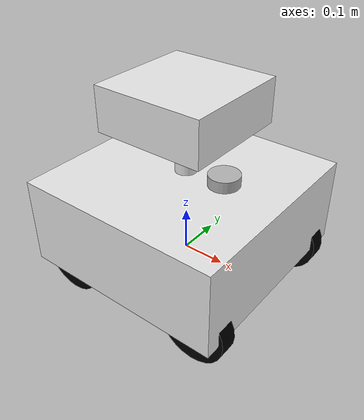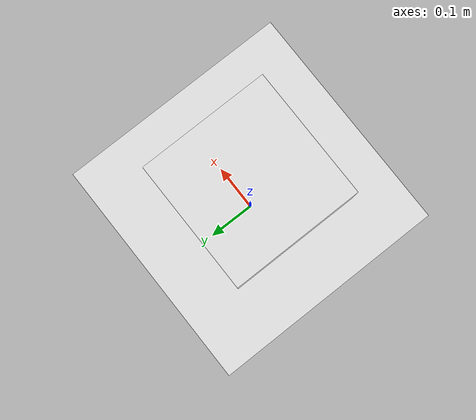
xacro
<?xml version="1.0"?>
<robot name="sentry" xmlns:xacro="http://ros.org/wiki/xacro">

    <xacro:include filename="$(find ghost_sim)/urdf/macros/actuator_macros.xacro"/>
    <xacro:include filename="$(find ghost_sim)/urdf/macros/sensor_macros.xacro"/>

    <!-- Import Primary Robot URDF -->
    <xacro:include filename="$(find ghost_description)/urdf_robomasters/sentry.xacro"/>

    <!-- Add Sensors -->
    <xacro:lidar_macro link_name="lidar_link" topic_name="scan"></xacro:lidar_macro>

    <!-- Add Mecanum -->
    <!-- https://github.com/qaz9517532846/gazebo_mecanum_plugins/tree/ros2-foxy -->
    <gazebo>
      <plugin name="gazebo_ros_mecanum_diff_drive" filename="libgazebo_ros_mecanum_diff_drive.so">
        <commandTopic>cmd_vel</commandTopic>
        <odometryFrame>world</odometryFrame>
        <robotBaseFrame>base_footprint</robotBaseFrame>
        <LeftRear>base_back_left_wheel_joint</LeftRear>
        <LeftFront>base_front_left_wheel_joint</LeftFront>
        <RightFront>base_front_right_wheel_joint</RightFront>
        <RightRear>base_back_right_wheel_joint</RightRear>
        <odometryRate>20</odometryRate>
        <WheelTorque>1</WheelTorque>
        <WheelSeparationW>${2 * y_dist_to_wheel}</WheelSeparationW>
        <WheelSeparationL>${2 * x_dist_to_wheel}</WheelSeparationL>
        <wheelAccel>5</wheelAccel>
        <wheelDiameter>${mecanum_diameter}</wheelDiameter>
        <publishOdom>true</publishOdom>
      </plugin>
    </gazebo>
</robot>

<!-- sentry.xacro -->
<robot name="sentry" xmlns:xacro="http://ros.org/wiki/xacro">

    <xacro:include filename="$(find ghost_description)/urdf_robomasters/mecanum_macros.xacro"/>

    <xacro:property name="mecanum_diameter" value="0.1525"/>
    <xacro:property name="mecanum_width" value="0.04"/>
    <xacro:property name="y_dist_to_wheel" value="0.183"/>
    <xacro:property name="x_dist_to_wheel" value="0.170"/>

    <material name="see-through-silver">
        <color rgba="0.9 0.9 0.9 1.0"/>
    </material>

    <link name="base_link">
        <visual>
            <origin xyz="0 0 0.1"/>
            <geometry>
                <box size="0.47244 0.47244 0.2"/>
            </geometry>
            <material name="see-through-silver"/>
        </visual>

        <collision>
            <origin xyz="0 0 0.15"/>
            <geometry>
                <box size="0.47244 0.47244 0.1"/>
            </geometry>
        </collision>

        <!--Inertia estimated for box of mass 10kg rotating about center with above dimensions-->
        <!-- https://en.wikipedia.org/wiki/List_of_moments_of_inertia#List_of_3D_inertia_tensors -->
        <inertial>
            <origin xyz="0 0 0"/>
            <mass value="10"/>
            <inertia
                ixx="0.240843" ixy="0.0" ixz="0.0"
                iyy="0.240843" iyz="0.0"
                izz="0.371997"/>
        </inertial>

        <gazebo>
            <maxVel>3.0</maxVel>
        </gazebo>
    </link>

    <link name="base_footprint">
        <inertial>
            <origin xyz="0 0 0" rpy="0 0 0"/>
            <mass value="0.00001"/>
            <inertia
                ixx="0.00001" ixy="0.0" ixz="0.0"
                iyy="0.00001" iyz="0.0"
                izz="0.00001"/>
        </inertial>
    </link>

    <joint name="base_footprint_joint" type="fixed">
        <parent link="base_link"/>
        <child link="base_footprint"/>
        <origin xyz="0 0 -${mecanum_diameter/2}"/>
    </joint>

    <link name="turret">
        <visual>
            <origin xyz="0 0 0"/>
            <geometry>
                <cylinder radius="0.025" length="0.1"/>
            </geometry>
            <material name="see-through-silver"/>
        </visual>

        <collision>
            <origin xyz="0 0 0"/>
            <geometry>
                <cylinder radius="0.025" length="0.1"/>
            </geometry>
        </collision>

        <visual>
            <origin xyz="0 0 0.1"/>
            <geometry>
                <box size="0.25 0.25 0.1"/>
            </geometry>
            <material name="see-through-silver"/>
        </visual>
    </link>

    <joint name="base_turret_joint" type="fixed">
        <parent link="base_link"/>
        <child link="turret"/>
        <origin xyz="0 0 0.25654"/>
    </joint>

    <xacro:mecanum_macro name="front_left_wheel" wheel_radius="${mecanum_diameter/2}" wheel_width="${mecanum_width}" x_pos="${x_dist_to_wheel}" y_pos="${y_dist_to_wheel}"/>
    <xacro:mecanum_macro name="front_right_wheel" wheel_radius="${mecanum_diameter/2}" wheel_width="${mecanum_width}" x_pos="${x_dist_to_wheel}" y_pos="-${y_dist_to_wheel}"/>
    <xacro:mecanum_macro name="back_left_wheel" wheel_radius="${mecanum_diameter/2}" wheel_width="${mecanum_width}" x_pos="-${x_dist_to_wheel}" y_pos="${y_dist_to_wheel}"/>
    <xacro:mecanum_macro name="back_right_wheel" wheel_radius="${mecanum_diameter/2}" wheel_width="${mecanum_width}" x_pos="-${x_dist_to_wheel}" y_pos="-${y_dist_to_wheel}"/>

    <!-- Sensors -->
    <link name="lidar_link">
        <inertial>
            <origin xyz="0.0 0 0.0" rpy="0 0 0"/>
            <mass value="0.125"/>
            <inertia ixx="0.001"  ixy="0"  ixz="0" iyy="0.001" iyz="0" izz="0.001" />
        </inertial>

        <visual>
            <origin xyz="0 0 0" rpy="0 0 0"/>
            <geometry>
            <cylinder radius="${0.06985/2}" length="0.0254"/>
            </geometry>
        </visual>
    </link>

    <joint name="lidar_joint" type="fixed">
        <parent link="base_link"/>
        <child link="lidar_link"/>
        <origin xyz="0.098 0 0.22" rpy="0 0 0"/>
    </joint>
</robot>

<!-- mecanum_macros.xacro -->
<robot xmlns:xacro="http://www.ros.org/wiki/xacro">
    <!-- Wheel Macro -->
    <xacro:macro name="mecanum_macro" params="name wheel_radius wheel_width x_pos y_pos">
        <link name="${name}">
            <visual>
                <geometry>
                    <cylinder radius="${wheel_radius}" length="${wheel_width}"/>
                </geometry>
                <material name="black">
                    <color rgba="0 0 0 1.0"/>
                </material>
            </visual>

            <collision>
                <origin xyz="0 0 0"/>
                <geometry>
                    <cylinder radius="${wheel_radius}" length="${wheel_width}"/>
                </geometry>
            </collision>

            <!--Inertia estimated for solid cylinder of radius 2.5" and height 1" with mass 1 lb-->
            <!-- Just going with Maxx's math here and assuming swerve wheel ~ mecanum inertial-->
            <inertial>
                <origin xyz="0 0 0"/>
                <mass value="0.4545"/>
                <inertia
                    ixx="0.000482" ixy="0.0" ixz="0.0"
                    iyy="0.000482" iyz="0.0"
                    izz="0.000914"/>
            </inertial>
        </link>

        <joint name="base_${name}_joint" type="continuous">
            <parent link="base_link"/>
            <child link="${name}"/>
            <origin xyz="${x_pos} ${y_pos} 0" rpy="-${pi/2} 0 0"/>
            <axis xyz="0 0 1"/>
        </joint>

        <!-- Joint State Publisher -->
        <gazebo>
            <plugin name="gazebo_ros_joint_state_publisher" filename="libgazebo_ros_joint_state_publisher.so">
                <update_rate>100</update_rate>
                <joint_name>base_${name}_joint</joint_name>
            </plugin>
        </gazebo>
    </xacro:macro>
</robot>
